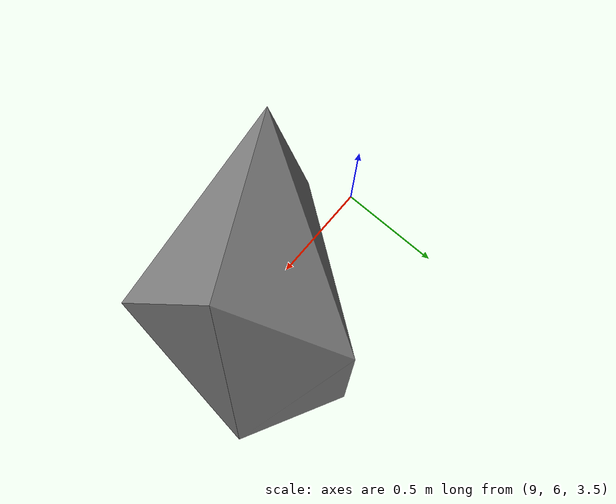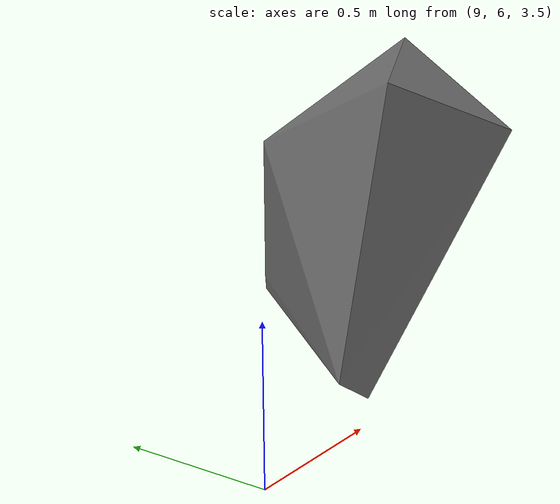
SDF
<sdf version="1.8">
 <model name="blue_mountains">
  <static>true</static>
  <link name="forest_20_20">
   <collision name="tree_30_trunk">
    <pose>9.384579 6.200025 1.221333 0 0 2.425909</pose>
    <geometry><cylinder><radius>0.04653754</radius><length>2.801675</length></cylinder></geometry>
   </collision>
   <collision name="plant_30_crown_0">
    <pose>9.398626 6.187811 -0.1795042 0 0 2.425909</pose>
    <geometry>
     <mesh>
      <uri>model://blue_mountains/meshes/canopy_4_0.dae</uri>
      <scale>0.1861502 0.1861502 0.2087715</scale>
     </mesh>
    </geometry>
   </collision>
   <collision name="plant_30_crown_1">
    <pose>9.398626 6.187811 -0.1795042 0 0 2.425909</pose>
    <geometry>
     <mesh>
      <uri>model://blue_mountains/meshes/canopy_4_1.dae</uri>
      <scale>0.1861502 0.1861502 0.2087715</scale>
     </mesh>
    </geometry>
   </collision>
   <collision name="tree_44_trunk">
    <pose>9.391151 8.653461 1.29096 0 0 1.173134</pose>
    <geometry><cylinder><radius>0.03751789</radius><length>2.231625</length></cylinder></geometry>
   </collision>
   <collision name="plant_44_crown_0">
    <pose>9.385339 8.639625 0.1751473 0 0 1.173134</pose>
    <geometry>
     <mesh>
      <uri>model://blue_mountains/meshes/canopy_0_0.dae</uri>
      <scale>0.1500716 0.1500716 0.1645811</scale>
     </mesh>
    </geometry>
   </collision>
   <collision name="plant_44_crown_1">
    <pose>9.385339 8.639625 0.1751473 0 0 1.173134</pose>
    <geometry>
     <mesh>
      <uri>model://blue_mountains/meshes/canopy_0_1.dae</uri>
      <scale>0.1500716 0.1500716 0.1645811</scale>
     </mesh>
    </geometry>
   </collision>
   <collision name="tree_57_trunk">
    <pose>2.440705 8.303357 1.065425 0 0 2.78375</pose>
    <geometry><cylinder><radius>0.04416484</radius><length>2.128023</length></cylinder></geometry>
   </collision>
   <collision name="plant_57_crown_0">
    <pose>2.457252 8.29717 0.001413584 0 0 2.78375</pose>
    <geometry>
     <mesh>
      <uri>model://blue_mountains/meshes/canopy_3_0.dae</uri>
      <scale>0.1766594 0.1766594 0.1582086</scale>
     </mesh>
    </geometry>
   </collision>
   <collision name="plant_57_crown_1">
    <pose>2.457252 8.29717 0.001413584 0 0 2.78375</pose>
    <geometry>
     <mesh>
      <uri>model://blue_mountains/meshes/canopy_3_1.dae</uri>
      <scale>0.1766594 0.1766594 0.1582086</scale>
     </mesh>
    </geometry>
   </collision>
   <collision name="tree_59_trunk">
    <pose>8.688859 7.24756 1.289584 0 0 -1.78652</pose>
    <geometry><cylinder><radius>0.04439496</radius><length>2.621183</length></cylinder></geometry>
   </collision>
   <collision name="plant_59_crown_0">
    <pose>8.69266 7.264906 -0.02100754 0 0 -1.78652</pose>
    <geometry>
     <mesh>
      <uri>model://blue_mountains/meshes/canopy_7_0.dae</uri>
      <scale>0.1775799 0.1775799 0.1970772</scale>
     </mesh>
    </geometry>
   </collision>
   <collision name="plant_59_crown_1">
    <pose>8.69266 7.264906 -0.02100754 0 0 -1.78652</pose>
    <geometry>
     <mesh>
      <uri>model://blue_mountains/meshes/canopy_7_1.dae</uri>
      <scale>0.1775799 0.1775799 0.1970772</scale>
     </mesh>
    </geometry>
   </collision>
   <collision name="tree_89_trunk">
    <pose>9.330602 0.4031146 1.162808 0 0 1.019278</pose>
    <geometry><cylinder><radius>0.05300152</radius><length>3.330662</length></cylinder></geometry>
   </collision>
   <collision name="plant_89_crown_0">
    <pose>9.319493 0.3850574 -0.5025227 0 0 1.019278</pose>
    <geometry>
     <mesh>
      <uri>model://blue_mountains/meshes/canopy_7_0.dae</uri>
      <scale>0.2120061 0.2120061 0.2504203</scale>
     </mesh>
    </geometry>
   </collision>
   <collision name="plant_89_crown_1">
    <pose>9.319493 0.3850574 -0.5025227 0 0 1.019278</pose>
    <geometry>
     <mesh>
      <uri>model://blue_mountains/meshes/canopy_7_1.dae</uri>
      <scale>0.2120061 0.2120061 0.2504203</scale>
     </mesh>
    </geometry>
   </collision>
   <collision name="tree_129_trunk">
    <pose>8.680436 4.12069 0.8570864 0 0 3.113729</pose>
    <geometry><cylinder><radius>0.03852841</radius><length>2.205274</length></cylinder></geometry>
   </collision>
   <collision name="plant_129_crown_0">
    <pose>8.695842 4.12026 -0.2455509 0 0 3.113729</pose>
    <geometry>
     <mesh>
      <uri>model://blue_mountains/meshes/canopy_1_0.dae</uri>
      <scale>0.1541136 0.1541136 0.1628834</scale>
     </mesh>
    </geometry>
   </collision>
   <collision name="plant_129_crown_1">
    <pose>8.695842 4.12026 -0.2455509 0 0 3.113729</pose>
    <geometry>
     <mesh>
      <uri>model://blue_mountains/meshes/canopy_1_1.dae</uri>
      <scale>0.1541136 0.1541136 0.1628834</scale>
     </mesh>
    </geometry>
   </collision>
   <collision name="tree_137_trunk">
    <pose>6.192592 8.611322 1.474592 0 0 1.703567</pose>
    <geometry><cylinder><radius>0.04478546</radius><length>2.605662</length></cylinder></geometry>
   </collision>
   <collision name="plant_137_crown_0">
    <pose>6.194963 8.593566 0.1717615 0 0 1.703567</pose>
    <geometry>
     <mesh>
      <uri>model://blue_mountains/meshes/canopy_5_0.dae</uri>
      <scale>0.1791419 0.1791419 0.1958534</scale>
     </mesh>
    </geometry>
   </collision>
   <collision name="plant_137_crown_1">
    <pose>6.194963 8.593566 0.1717615 0 0 1.703567</pose>
    <geometry>
     <mesh>
      <uri>model://blue_mountains/meshes/canopy_5_1.dae</uri>
      <scale>0.1791419 0.1791419 0.1958534</scale>
     </mesh>
    </geometry>
   </collision>
   <collision name="tree_174_trunk">
    <pose>8.302682 8.939988 1.67815 0 0 -1.446486</pose>
    <geometry><cylinder><radius>0.05459204</radius><length>2.9219</length></cylinder></geometry>
   </collision>
   <collision name="plant_174_crown_0">
    <pose>8.299974 8.961657 0.2171996 0 0 -1.446486</pose>
    <geometry>
     <mesh>
      <uri>model://blue_mountains/meshes/canopy_0_0.dae</uri>
      <scale>0.2183682 0.2183682 0.2154884</scale>
     </mesh>
    </geometry>
   </collision>
   <collision name="plant_174_crown_1">
    <pose>8.299974 8.961657 0.2171996 0 0 -1.446486</pose>
    <geometry>
     <mesh>
      <uri>model://blue_mountains/meshes/canopy_0_1.dae</uri>
      <scale>0.2183682 0.2183682 0.2154884</scale>
     </mesh>
    </geometry>
   </collision>
   <collision name="tree_201_trunk">
    <pose>7.086926 4.05894 1.077586 0 0 1.907233</pose>
    <geometry><cylinder><radius>0.03607531</radius><length>2.253421</length></cylinder></geometry>
   </collision>
   <collision name="plant_201_crown_0">
    <pose>7.09169 4.045319 -0.04912472 0 0 1.907233</pose>
    <geometry>
     <mesh>
      <uri>model://blue_mountains/meshes/canopy_2_0.dae</uri>
      <scale>0.1443012 0.1443012 0.1657963</scale>
     </mesh>
    </geometry>
   </collision>
   <collision name="plant_201_crown_1">
    <pose>7.09169 4.045319 -0.04912472 0 0 1.907233</pose>
    <geometry>
     <mesh>
      <uri>model://blue_mountains/meshes/canopy_2_1.dae</uri>
      <scale>0.1443012 0.1443012 0.1657963</scale>
     </mesh>
    </geometry>
   </collision>
   <collision name="tree_268_trunk">
    <pose>8.17531 6.379584 1.362384 0 0 2.027316</pose>
    <geometry><cylinder><radius>0.05505518</radius><length>2.861896</length></cylinder></geometry>
   </collision>
   <collision name="plant_268_crown_0">
    <pose>8.185018 6.359818 -0.06856441 0 0 2.027316</pose>
    <geometry>
     <mesh>
      <uri>model://blue_mountains/meshes/canopy_4_0.dae</uri>
      <scale>0.2202207 0.2202207 0.213259</scale>
     </mesh>
    </geometry>
   </collision>
   <collision name="plant_268_crown_1">
    <pose>8.185018 6.359818 -0.06856441 0 0 2.027316</pose>
    <geometry>
     <mesh>
      <uri>model://blue_mountains/meshes/canopy_4_1.dae</uri>
      <scale>0.2202207 0.2202207 0.213259</scale>
     </mesh>
    </geometry>
   </collision>
   <collision name="tree_287_trunk">
    <pose>2.26742 9.868808 1.745891 0 0 1.345738</pose>
    <geometry><cylinder><radius>0.06942218</radius><length>3.421685</length></cylinder></geometry>
   </collision>
   <collision name="plant_287_crown_0">
    <pose>2.261223 9.84174 0.03504848 0 0 1.345738</pose>
    <geometry>
     <mesh>
      <uri>model://blue_mountains/meshes/canopy_5_0.dae</uri>
      <scale>0.2776887 0.2776887 0.2571894</scale>
     </mesh>
    </geometry>
   </collision>
   <collision name="plant_287_crown_1">
    <pose>2.261223 9.84174 0.03504848 0 0 1.345738</pose>
    <geometry>
     <mesh>
      <uri>model://blue_mountains/meshes/canopy_5_1.dae</uri>
      <scale>0.2776887 0.2776887 0.2571894</scale>
     </mesh>
    </geometry>
   </collision>
   <collision name="tree_299_trunk">
    <pose>8.744756 0.8725434 1.752085 0 0 -0.2373241</pose>
    <geometry><cylinder><radius>0.06839006</radius><length>4.12927</length></cylinder></geometry>
   </collision>
   <collision name="plant_299_crown_0">
    <pose>8.718166 0.8789749 -0.3125498 0 0 -0.2373241</pose>
    <geometry>
     <mesh>
      <uri>model://blue_mountains/meshes/canopy_7_0.dae</uri>
      <scale>0.2735602 0.2735602 0.3104647</scale>
     </mesh>
    </geometry>
   </collision>
   <collision name="plant_299_crown_1">
    <pose>8.718166 0.8789749 -0.3125498 0 0 -0.2373241</pose>
    <geometry>
     <mesh>
      <uri>model://blue_mountains/meshes/canopy_7_1.dae</uri>
      <scale>0.2735602 0.2735602 0.3104647</scale>
     </mesh>
    </geometry>
   </collision>
   <collision name="tree_323_trunk">
    <pose>0.1143363 7.478538 1.092719 0 0 2.543933</pose>
    <geometry><cylinder><radius>0.04885071</radius><length>2.765608</length></cylinder></geometry>
   </collision>
   <collision name="plant_323_crown_0">
    <pose>0.1304893 7.467543 -0.2900848 0 0 2.543933</pose>
    <geometry>
     <mesh>
      <uri>model://blue_mountains/meshes/canopy_8_0.dae</uri>
      <scale>0.1954028 0.1954028 0.205786</scale>
     </mesh>
    </geometry>
   </collision>
   <collision name="plant_323_crown_1">
    <pose>0.1304893 7.467543 -0.2900848 0 0 2.543933</pose>
    <geometry>
     <mesh>
      <uri>model://blue_mountains/meshes/canopy_8_1.dae</uri>
      <scale>0.1954028 0.1954028 0.205786</scale>
     </mesh>
    </geometry>
   </collision>
   <collision name="tree_412_trunk">
    <pose>7.525622 6.57509 1.594961 0 0 -0.1588167</pose>
    <geometry><cylinder><radius>0.06139247</radius><length>3.243334</length></cylinder></geometry>
   </collision>
   <collision name="plant_412_crown_0">
    <pose>7.501374 6.578974 -0.02670574 0 0 -0.1588167</pose>
    <geometry>
     <mesh>
      <uri>model://blue_mountains/meshes/canopy_5_0.dae</uri>
      <scale>0.2455699 0.2455699 0.2437838</scale>
     </mesh>
    </geometry>
   </collision>
   <collision name="plant_412_crown_1">
    <pose>7.501374 6.578974 -0.02670574 0 0 -0.1588167</pose>
    <geometry>
     <mesh>
      <uri>model://blue_mountains/meshes/canopy_5_1.dae</uri>
      <scale>0.2455699 0.2455699 0.2437838</scale>
     </mesh>
    </geometry>
   </collision>
   <visual name="forest_visual">
    <geometry><mesh><uri>model://blue_mountains/meshes/forest_20_20.dae</uri></mesh></geometry>
    <cast_shadows>false</cast_shadows>
   </visual>
  </link>
 </model>
</sdf>
